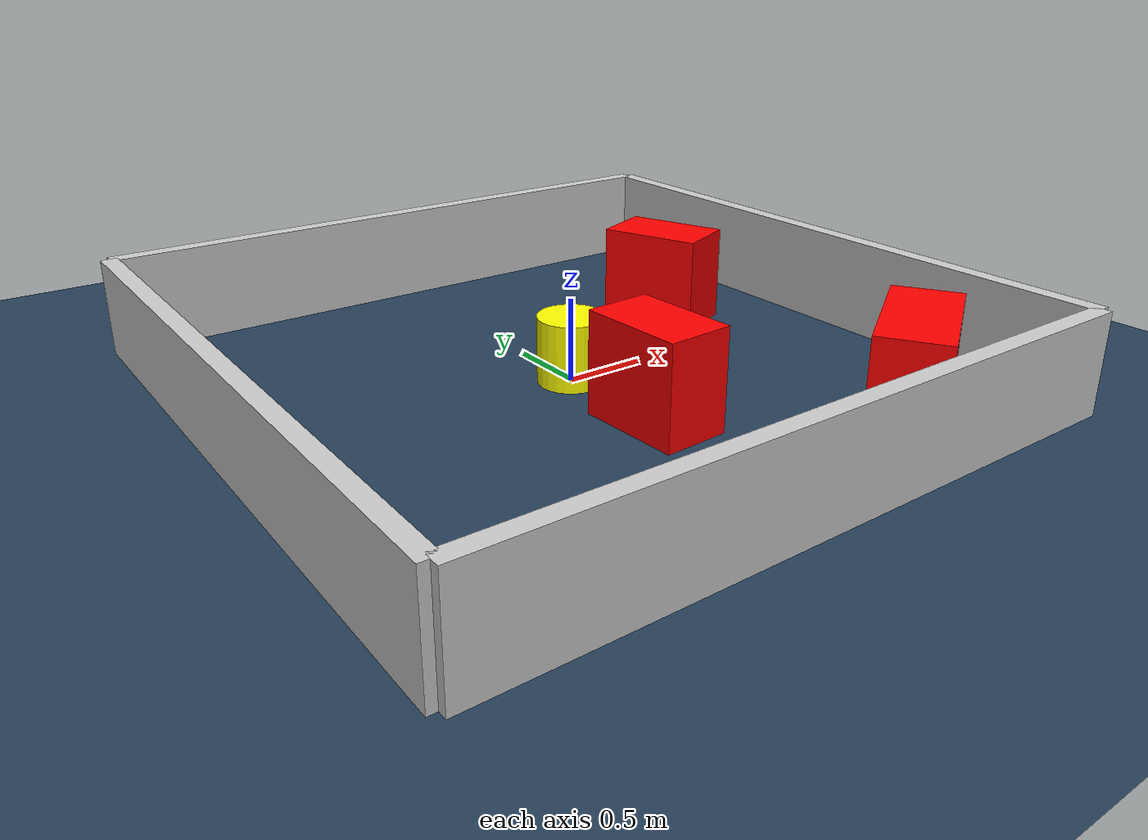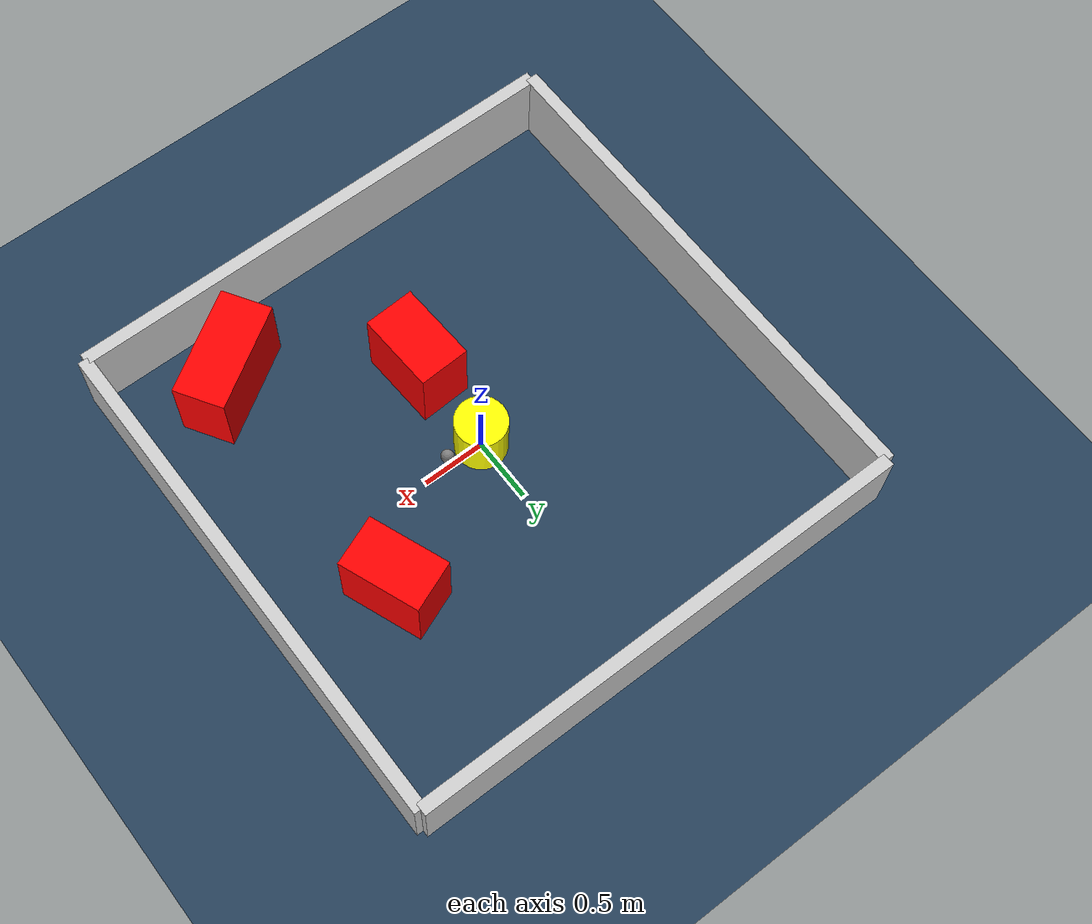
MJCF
<?xml version="1.0" ?>
<mujoco model="generated_environment">
  <option timestep="0.01" integrator="RK4" cone="elliptic"/>
  <default>
    <geom density="1"/>
  </default>
  <asset>
    <texture builtin="gradient" height="3072" rgb1="0.3 0.5 0.7" rgb2="0 0 0" type="skybox" width="512"/>
    <texture builtin="checker" height="300" mark="edge" markrgb="0.8 0.8 0.8" name="groundplane" rgb1="0.2 0.3 0.4" rgb2="0.1 0.2 0.3" type="2d" width="300"/>
    <material name="groundplane" reflectance="0.2" texrepeat="5 5" texture="groundplane" texuniform="true"/>
    <material name="robot" rgba="0.0 1.0 0.0 1"/>
  </asset>
  <worldbody>
    <light dir="0 0 -1" directional="true" pos="0 0 1.5"/>
    <geom condim="4" friction="1.0 0.005 0.001" material="groundplane" name="floor" size="0 0 0.05" type="plane"/>
    <body name="walls">
      <geom name="wall_1" condim="4" pos="-2.0 0.0 0.3" rgba="0.800000011920929 0.800000011920929 0.800000011920929 1.0" size="0.05 2.0 0.3" type="box"/>
      <geom name="wall_2" condim="4" pos="2.0 0.0 0.3" rgba="0.800000011920929 0.800000011920929 0.800000011920929 1.0" size="0.05 2.0 0.3" type="box"/>
      <geom name="wall_3" condim="4" pos="0.0 -2.0 0.3" rgba="0.800000011920929 0.800000011920929 0.800000011920929 1.0" size="2.0 0.05 0.3" type="box"/>
      <geom name="wall_4" condim="4" pos="0.0 2.0 0.3" rgba="0.800000011920929 0.800000011920929 0.800000011920929 1.0" size="2.0 0.05 0.3" type="box"/>
    </body>
    <body name="robot">
      <joint name="joint_x" type="slide" pos="0 0 0" axis="1 0 0"/>
      <joint name="joint_y" type="slide" pos="0 0 0" axis="0 1 0"/>
      <geom name="robot" type="sphere" pos="0.3 0.0 0.2" size="0.05" mass="5." friction="1.0 0.005 0.0001" condim="4" rgba="0.5 0.5 0.5 1.0"/>
      <site name="sensor_ball"/>
    </body>
    <body name="obstacle_movable_1">
      <geom name="obstacle_movable_1" condim="4" pos="0.0 0.0 0.2" euler="0 0 0.0" friction="1.0 0.005 0.001" rgba="1.0 1.0 0.0 1.0" size="0.2 0.2 0.0" type="cylinder" mass="0.1"/>
      <joint type="free"/>
    </body>
    <body name="obstacle_2_static">
      <geom name="obstacle_2_static" condim="4" pos="1.1579359409062873 0.5563255849332747 0.3" euler="0 0 291.43258036240786" friction="1.0 0.005 0.001" rgba="1 0 0 1" size="0.32050199601166696 0.2 0.3" type="box"/>
    </body>
    <body name="obstacle_3_static">
      <geom name="obstacle_3_static" condim="4" pos="0.02293114092872428 -0.7278884259831855 0.3" euler="0 0 272.97931971311385" friction="1.0 0.005 0.001" rgba="1 0 0 1" size="0.3154952328920794 0.2 0.3" type="box"/>
    </body>
    <body name="obstacle_4_static">
      <geom name="obstacle_4_static" condim="4" pos="1.1705572652162632 -1.4834116739672776 0.3" euler="0 0 32.213411027767826" friction="1.0 0.005 0.001" rgba="1 0 0 1" size="0.4268999517544416 0.2 0.3" type="box"/>
    </body>
  </worldbody>
  <actuator>
    <motor name="actuator_x" joint="joint_x" gear="1" ctrlrange="-1 1"/>
    <motor name="actuator_y" joint="joint_y" gear="1" ctrlrange="-1 1"/>
  </actuator>
</mujoco>
